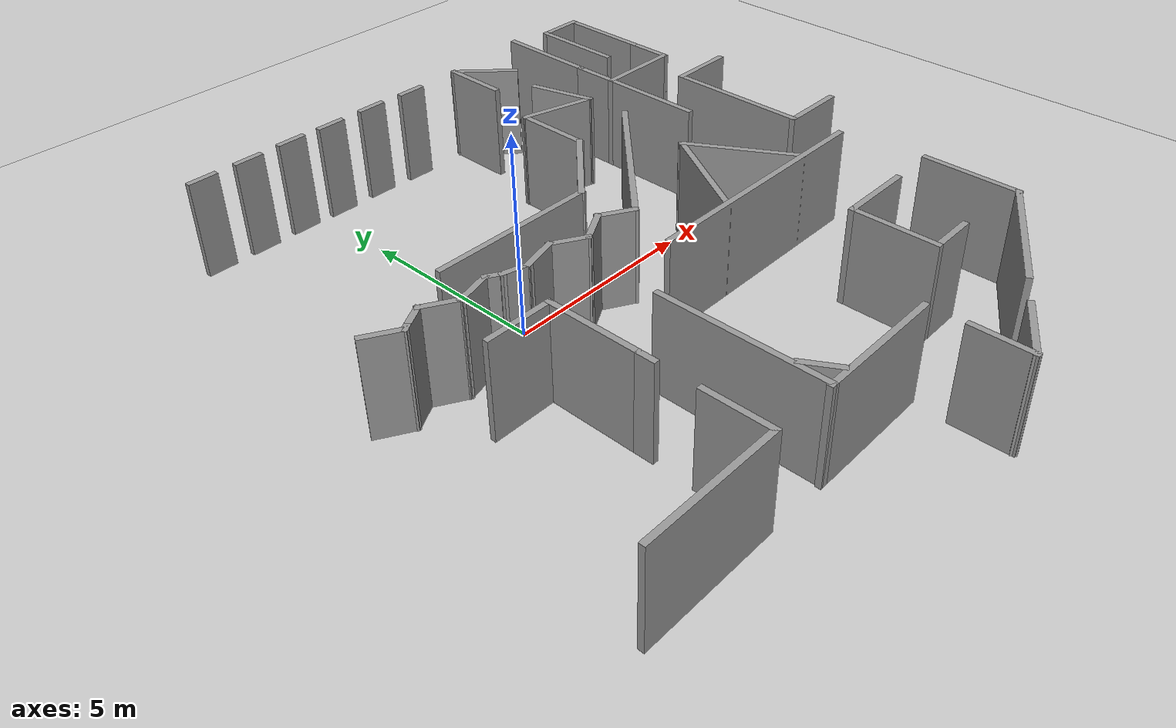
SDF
<sdf version="1.7">
 <world name="default">
  <model name="ground_plane">
   <static>1</static>
   <link name="link">
    <collision name="collision">
     <geometry><plane><normal>0 0 1</normal><size>100 100</size></plane></geometry>
     <surface><friction><ode><mu>100</mu><mu2>50</mu2></ode></friction></surface>
    </collision>
    <visual name="visual">
     <cast_shadows>0</cast_shadows>
     <geometry><plane><normal>0 0 1</normal><size>100 100</size></plane></geometry>
     <material>
      <script><uri>file://media/materials/scripts/gazebo.material</uri><name>Gazebo/Grey</name></script>
     </material>
    </visual>
   </link>
  </model>
  <model name="complicated_walls">
   <pose>2.75281 -1.1927 0 0 -0 0</pose>
   <link name="Wall_101">
    <collision name="Wall_101_Collision">
     <geometry><box><size>2.25 0.15 2.5</size></box></geometry>
     <pose>0 0 1.25 0 -0 0</pose>
    </collision>
    <visual name="Wall_101_Visual">
     <pose>0 0 1.25 0 -0 0</pose>
     <geometry><box><size>2.25 0.15 2.5</size></box></geometry>
     <material>
      <script><uri>file://media/materials/scripts/gazebo.material</uri><name>Gazebo/Grey</name></script>
      <ambient>1 1 1 1</ambient>
     </material>
     <meta><layer>0</layer></meta>
    </visual>
    <pose>5.22484 4.90268 0 0 -0 0</pose>
   </link>
   <link name="Wall_102">
    <collision name="Wall_102_Collision">
     <geometry><box><size>1.25 0.15 2.5</size></box></geometry>
     <pose>0 0 1.25 0 -0 0</pose>
    </collision>
    <visual name="Wall_102_Visual">
     <pose>0 0 1.25 0 -0 0</pose>
     <geometry><box><size>1.25 0.15 2.5</size></box></geometry>
     <material>
      <script><uri>file://media/materials/scripts/gazebo.material</uri><name>Gazebo/Grey</name></script>
      <ambient>1 1 1 1</ambient>
     </material>
     <meta><layer>0</layer></meta>
    </visual>
    <pose>6.27484 5.45268 0 0 -0 1.5708</pose>
   </link>
   <link name="Wall_108">
    <collision name="Wall_108_Collision">
     <geometry><box><size>2.5 0.15 2.5</size></box></geometry>
     <pose>0 0 1.25 0 -0 0</pose>
    </collision>
    <visual name="Wall_108_Visual">
     <pose>0 0 1.25 0 -0 0</pose>
     <geometry><box><size>2.5 0.15 2.5</size></box></geometry>
     <material>
      <script><uri>file://media/materials/scripts/gazebo.material</uri><name>Gazebo/Grey</name></script>
      <ambient>1 1 1 1</ambient>
     </material>
     <meta><layer>0</layer></meta>
    </visual>
    <pose>6.27484 7.17768 0 0 -0 1.5708</pose>
   </link>
   <link name="Wall_109">
    <collision name="Wall_109_Collision">
     <geometry><box><size>1.25 0.15 2.5</size></box></geometry>
     <pose>0 0 1.25 0 -0 0</pose>
    </collision>
    <visual name="Wall_109_Visual">
     <pose>0 0 1.25 0 -0 0</pose>
     <geometry><box><size>1.25 0.15 2.5</size></box></geometry>
     <material>
      <script><uri>file://media/materials/scripts/gazebo.material</uri><name>Gazebo/Grey</name></script>
      <ambient>1 1 1 1</ambient>
     </material>
     <meta><layer>0</layer></meta>
    </visual>
    <pose>5.72484 8.35268 0 0 -0 3.14159</pose>
   </link>
   <link name="Wall_110">
    <collision name="Wall_110_Collision">
     <geometry><box><size>2.5 0.15 2.5</size></box></geometry>
     <pose>0 0 1.25 0 -0 0</pose>
    </collision>
    <visual name="Wall_110_Visual">
     <pose>0 0 1.25 0 -0 0</pose>
     <geometry><box><size>2.5 0.15 2.5</size></box></geometry>
     <material>
      <script><uri>file://media/materials/scripts/gazebo.material</uri><name>Gazebo/Grey</name></script>
      <ambient>1 1 1 1</ambient>
     </material>
     <meta><layer>0</layer></meta>
    </visual>
    <pose>5.17484 7.17768 0 0 -0 -1.5708</pose>
   </link>
   <link name="Wall_112">
    <collision name="Wall_112_Collision">
     <geometry><box><size>1.75 0.15 2.5</size></box></geometry>
     <pose>0 0 1.25 0 -0 0</pose>
    </collision>
    <visual name="Wall_112_Visual">
     <pose>0 0 1.25 0 -0 0</pose>
     <geometry><box><size>1.75 0.15 2.5</size></box></geometry>
     <material>
      <script><uri>file://media/materials/scripts/gazebo.material</uri><name>Gazebo/Grey</name></script>
      <ambient>1 1 1 1</ambient>
     </material>
     <meta><layer>0</layer></meta>
    </visual>
    <pose>2.32734 7.82443 0 0 -0 2.35619</pose>
   </link>
   <link name="Wall_113">
    <collision name="Wall_113_Collision">
     <geometry><box><size>1.75 0.15 2.5</size></box></geometry>
     <pose>0 0 1.25 0 -0 0</pose>
    </collision>
    <visual name="Wall_113_Visual">
     <pose>0 0 1.25 0 -0 0</pose>
     <geometry><box><size>1.75 0.15 2.5</size></box></geometry>
     <material>
      <script><uri>file://media/materials/scripts/gazebo.material</uri><name>Gazebo/Grey</name></script>
      <ambient>1 1 1 1</ambient>
     </material>
     <meta><layer>0</layer></meta>
    </visual>
    <pose>1.76165 7.59012 0 0 -0 -1.5708</pose>
   </link>
   <link name="Wall_115">
    <collision name="Wall_115_Collision">
     <geometry><box><size>1.75 0.15 2.5</size></box></geometry>
     <pose>0 0 1.25 0 -0 0</pose>
    </collision>
    <visual name="Wall_115_Visual">
     <pose>0 0 1.25 0 -0 0</pose>
     <geometry><box><size>1.75 0.15 2.5</size></box></geometry>
     <material>
      <script><uri>file://media/materials/scripts/gazebo.material</uri><name>Gazebo/Grey</name></script>
      <ambient>1 1 1 1</ambient>
     </material>
     <meta><layer>0</layer></meta>
    </visual>
    <pose>2.79418 5.38476 0 0 -0 -1.309</pose>
   </link>
   <link name="Wall_116">
    <collision name="Wall_116_Collision">
     <geometry><box><size>2 0.15 2.5</size></box></geometry>
     <pose>0 0 1.25 0 -0 0</pose>
    </collision>
    <visual name="Wall_116_Visual">
     <pose>0 0 1.25 0 -0 0</pose>
     <geometry><box><size>2 0.15 2.5</size></box></geometry>
     <material>
      <script><uri>file://media/materials/scripts/gazebo.material</uri><name>Gazebo/Grey</name></script>
      <ambient>1 1 1 1</ambient>
     </material>
     <meta><layer>0</layer></meta>
    </visual>
    <pose>2.10775 4.85142 0 0 -0 2.87979</pose>
   </link>
   <link name="Wall_118">
    <collision name="Wall_118_Collision">
     <geometry><box><size>2 0.15 2.5</size></box></geometry>
     <pose>0 0 1.25 0 -0 0</pose>
    </collision>
    <visual name="Wall_118_Visual">
     <pose>0 0 1.25 0 -0 0</pose>
     <geometry><box><size>2 0.15 2.5</size></box></geometry>
     <material>
      <script><uri>file://media/materials/scripts/gazebo.material</uri><name>Gazebo/Grey</name></script>
      <ambient>1 1 1 1</ambient>
     </material>
     <meta><layer>0</layer></meta>
    </visual>
    <pose>1.21427 4.16583 0 0 -0 -1.5708</pose>
   </link>
   <link name="Wall_121">
    <collision name="Wall_121_Collision">
     <geometry><box><size>2.5 0.15 2.5</size></box></geometry>
     <pose>0 0 1.25 0 -0 0</pose>
    </collision>
    <visual name="Wall_121_Visual">
     <pose>0 0 1.25 0 -0 0</pose>
     <geometry><box><size>2.5 0.15 2.5</size></box></geometry>
     <material>
      <script><uri>file://media/materials/scripts/gazebo.material</uri><name>Gazebo/Grey</name></script>
      <ambient>1 1 1 1</ambient>
     </material>
     <meta><layer>0</layer></meta>
    </visual>
    <pose>0.38342 2.40998 0 0 -0 -2.35619</pose>
   </link>
   <link name="Wall_122">
    <collision name="Wall_122_Collision">
     <geometry><box><size>4.25 0.15 2.5</size></box></geometry>
     <pose>0 0 1.25 0 -0 0</pose>
    </collision>
    <visual name="Wall_122_Visual">
     <pose>0 0 1.25 0 -0 0</pose>
     <geometry><box><size>4.25 0.15 2.5</size></box></geometry>
     <material>
      <script><uri>file://media/materials/scripts/gazebo.material</uri><name>Gazebo/Grey</name></script>
      <ambient>1 1 1 1</ambient>
     </material>
     <meta><layer>0</layer></meta>
    </visual>
    <pose>-2.49743 1.57913 0 0 -0 3.14159</pose>
   </link>
   <link name="Wall_126">
    <collision name="Wall_126_Collision">
     <geometry><box><size>0.75 0.15 2.5</size></box></geometry>
     <pose>0 0 1.25 0 -0 0</pose>
    </collision>
    <visual name="Wall_126_Visual">
     <pose>0 0 1.25 0 -0 0</pose>
     <geometry><box><size>0.75 0.15 2.5</size></box></geometry>
     <material>
      <script><uri>file://media/materials/scripts/gazebo.material</uri><name>Gazebo/Grey</name></script>
      <ambient>1 1 1 1</ambient>
     </material>
     <meta><layer>0</layer></meta>
    </visual>
    <pose>0.251573 8.36592 0 0 -0 0</pose>
   </link>
   <link name="Wall_128">
    <collision name="Wall_128_Collision">
     <geometry><box><size>0.75 0.15 2.5</size></box></geometry>
     <pose>0 0 1.25 0 -0 0</pose>
    </collision>
    <visual name="Wall_128_Visual">
     <pose>0 0 1.25 0 -0 0</pose>
     <geometry><box><size>0.75 0.15 2.5</size></box></geometry>
     <material>
      <script><uri>file://media/materials/scripts/gazebo.material</uri><name>Gazebo/Grey</name></script>
      <ambient>1 1 1 1</ambient>
     </material>
     <meta><layer>0</layer></meta>
    </visual>
    <pose>-0.995716 8.40637 0 0 -0 3.14159</pose>
   </link>
   <link name="Wall_130">
    <collision name="Wall_130_Collision">
     <geometry><box><size>0.75 0.15 2.5</size></box></geometry>
     <pose>0 0 1.25 0 -0 0</pose>
    </collision>
    <visual name="Wall_130_Visual">
     <pose>0 0 1.25 0 -0 0</pose>
     <geometry><box><size>0.75 0.15 2.5</size></box></geometry>
     <material>
      <script><uri>file://media/materials/scripts/gazebo.material</uri><name>Gazebo/Grey</name></script>
      <ambient>1 1 1 1</ambient>
     </material>
     <meta><layer>0</layer></meta>
    </visual>
    <pose>-2.24241 8.39485 0 0 -0 3.14159</pose>
   </link>
   <link name="Wall_132">
    <collision name="Wall_132_Collision">
     <geometry><box><size>0.75 0.15 2.5</size></box></geometry>
     <pose>0 0 1.25 0 -0 0</pose>
    </collision>
    <visual name="Wall_132_Visual">
     <pose>0 0 1.25 0 -0 0</pose>
     <geometry><box><size>0.75 0.15 2.5</size></box></geometry>
     <material>
      <script><uri>file://media/materials/scripts/gazebo.material</uri><name>Gazebo/Grey</name></script>
      <ambient>1 1 1 1</ambient>
     </material>
     <meta><layer>0</layer></meta>
    </visual>
    <pose>-3.37562 8.42145 0 0 -0 3.14159</pose>
   </link>
   <link name="Wall_134">
    <collision name="Wall_134_Collision">
     <geometry><box><size>0.75 0.15 2.5</size></box></geometry>
     <pose>0 0 1.25 0 -0 0</pose>
    </collision>
    <visual name="Wall_134_Visual">
     <pose>0 0 1.25 0 -0 0</pose>
     <geometry><box><size>0.75 0.15 2.5</size></box></geometry>
     <material>
      <script><uri>file://media/materials/scripts/gazebo.material</uri><name>Gazebo/Grey</name></script>
      <ambient>1 1 1 1</ambient>
     </material>
     <meta><layer>0</layer></meta>
    </visual>
    <pose>-4.57263 8.39485 0 0 -0 3.14159</pose>
   </link>
   <link name="Wall_136">
    <collision name="Wall_136_Collision">
     <geometry><box><size>0.75 0.15 2.5</size></box></geometry>
     <pose>0 0 1.25 0 -0 0</pose>
    </collision>
    <visual name="Wall_136_Visual">
     <pose>0 0 1.25 0 -0 0</pose>
     <geometry><box><size>0.75 0.15 2.5</size></box></geometry>
     <material>
      <script><uri>file://media/materials/scripts/gazebo.material</uri><name>Gazebo/Grey</name></script>
      <ambient>1 1 1 1</ambient>
     </material>
     <meta><layer>0</layer></meta>
    </visual>
    <pose>-5.78024 8.39485 0 0 -0 3.14159</pose>
   </link>
   <link name="Wall_35">
    <collision name="Wall_35_Collision">
     <geometry><box><size>3.5 0.15 2.5</size></box></geometry>
     <pose>0 0 1.25 0 -0 0</pose>
    </collision>
    <visual name="Wall_35_Visual">
     <pose>0 0 1.25 0 -0 0</pose>
     <geometry><box><size>3.5 0.15 2.5</size></box></geometry>
     <material>
      <script><uri>file://media/materials/scripts/gazebo.material</uri><name>Gazebo/Grey</name></script>
      <ambient>1 1 1 1</ambient>
     </material>
     <meta><layer>0</layer></meta>
    </visual>
    <pose>-5.51959 -6.24325 0 0 -0 3.14159</pose>
   </link>
   <link name="Wall_37">
    <collision name="Wall_37_Collision">
     <geometry><box><size>1.75 0.15 2.5</size></box></geometry>
     <pose>0 0 1.25 0 -0 0</pose>
    </collision>
    <visual name="Wall_37_Visual">
     <pose>0 0 1.25 0 -0 0</pose>
     <geometry><box><size>1.75 0.15 2.5</size></box></geometry>
     <material>
      <script><uri>file://media/materials/scripts/gazebo.material</uri><name>Gazebo/Grey</name></script>
      <ambient>1 1 1 1</ambient>
     </material>
     <meta><layer>0</layer></meta>
    </visual>
    <pose>-3.84459 -5.44325 0 0 -0 1.5708</pose>
   </link>
   <link name="Wall_40">
    <collision name="Wall_40_Collision">
     <geometry><box><size>0.5 0.15 2.5</size></box></geometry>
     <pose>0 0 1.25 0 -0 0</pose>
    </collision>
    <visual name="Wall_40_Visual">
     <pose>0 0 1.25 0 -0 0</pose>
     <geometry><box><size>0.5 0.15 2.5</size></box></geometry>
     <material>
      <script><uri>file://media/materials/scripts/gazebo.material</uri><name>Gazebo/Grey</name></script>
      <ambient>1 1 1 1</ambient>
     </material>
     <meta><layer>0</layer></meta>
    </visual>
    <pose>-3.83383 -3.33511 0 0 -0 1.5708</pose>
   </link>
   <link name="Wall_42">
    <collision name="Wall_42_Collision">
     <geometry><box><size>2.5 0.15 2.5</size></box></geometry>
     <pose>0 0 1.25 0 -0 0</pose>
    </collision>
    <visual name="Wall_42_Visual">
     <pose>0 0 1.25 0 -0 0</pose>
     <geometry><box><size>2.5 0.15 2.5</size></box></geometry>
     <material>
      <script><uri>file://media/materials/scripts/gazebo.material</uri><name>Gazebo/Grey</name></script>
      <ambient>1 1 1 1</ambient>
     </material>
     <meta><layer>0</layer></meta>
    </visual>
    <pose>-3.83383 -1.98511 0 0 -0 1.5708</pose>
   </link>
   <link name="Wall_45">
    <collision name="Wall_45_Collision">
     <geometry><box><size>4.25 0.15 2.5</size></box></geometry>
     <pose>0 0 1.25 0 -0 0</pose>
    </collision>
    <visual name="Wall_45_Visual">
     <pose>0 0 1.25 0 -0 0</pose>
     <geometry><box><size>4.25 0.15 2.5</size></box></geometry>
     <material>
      <script><uri>file://media/materials/scripts/gazebo.material</uri><name>Gazebo/Grey</name></script>
      <ambient>1 1 1 1</ambient>
     </material>
     <meta><layer>0</layer></meta>
    </visual>
    <pose>-2.20117 -4.24331 0 0 -0 -1.5708</pose>
   </link>
   <link name="Wall_46">
    <collision name="Wall_46_Collision">
     <geometry><box><size>3.34054 0.15 2.5</size></box></geometry>
     <pose>0 0 1.25 0 -0 0</pose>
    </collision>
    <visual name="Wall_46_Visual">
     <pose>0 0 1.25 0 -0 0</pose>
     <geometry><box><size>3.34054 0.15 2.5</size></box></geometry>
     <material>
      <script><uri>file://media/materials/scripts/gazebo.material</uri><name>Gazebo/Grey</name></script>
      <ambient>1 1 1 1</ambient>
     </material>
     <meta><layer>0</layer></meta>
    </visual>
    <pose>-0.641081 -6.29331 0 0 -0 0</pose>
   </link>
   <link name="Wall_49">
    <collision name="Wall_49_Collision">
     <geometry><box><size>1.5 0.15 2.5</size></box></geometry>
     <pose>0 0 1.25 0 -0 0</pose>
    </collision>
    <visual name="Wall_49_Visual">
     <pose>0 0 1.25 0 -0 0</pose>
     <geometry><box><size>1.5 0.15 2.5</size></box></geometry>
     <material>
      <script><uri>file://media/materials/scripts/gazebo.material</uri><name>Gazebo/Grey</name></script>
      <ambient>1 1 1 1</ambient>
     </material>
     <meta><layer>0</layer></meta>
    </visual>
    <pose>0.983895 -7.92143 0 0 -0 -1.5708</pose>
   </link>
   <link name="Wall_53">
    <collision name="Wall_53_Collision">
     <geometry><box><size>1.75 0.15 2.5</size></box></geometry>
     <pose>0 0 1.25 0 -0 0</pose>
    </collision>
    <visual name="Wall_53_Visual">
     <pose>0 0 1.25 0 -0 0</pose>
     <geometry><box><size>1.75 0.15 2.5</size></box></geometry>
     <material>
      <script><uri>file://media/materials/scripts/gazebo.material</uri><name>Gazebo/Grey</name></script>
      <ambient>1 1 1 1</ambient>
     </material>
     <meta><layer>0</layer></meta>
    </visual>
    <pose>1.67671 -8.19642 0 0 -0 0.523599</pose>
   </link>
   <link name="Wall_55">
    <collision name="Wall_55_Collision">
     <geometry><box><size>3.5 0.15 2.5</size></box></geometry>
     <pose>0 0 1.25 0 -0 0</pose>
    </collision>
    <visual name="Wall_55_Visual">
     <pose>0 0 1.25 0 -0 0</pose>
     <geometry><box><size>3.5 0.15 2.5</size></box></geometry>
     <material>
      <script><uri>file://media/materials/scripts/gazebo.material</uri><name>Gazebo/Grey</name></script>
      <ambient>1 1 1 1</ambient>
     </material>
     <meta><layer>0</layer></meta>
    </visual>
    <pose>4.62687 -6.52097 0 0 -0 0.523599</pose>
   </link>
   <link name="Wall_57">
    <collision name="Wall_57_Collision">
     <geometry><box><size>2.5 0.15 2.5</size></box></geometry>
     <pose>0 0 1.25 0 -0 0</pose>
    </collision>
    <visual name="Wall_57_Visual">
     <pose>0 0 1.25 0 -0 0</pose>
     <geometry><box><size>2.5 0.15 2.5</size></box></geometry>
     <material>
      <script><uri>file://media/materials/scripts/gazebo.material</uri><name>Gazebo/Grey</name></script>
      <ambient>1 1 1 1</ambient>
     </material>
     <meta><layer>0</layer></meta>
    </visual>
    <pose>6.07746 -4.50847 0 0 -0 1.5708</pose>
   </link>
   <link name="Wall_59">
    <collision name="Wall_59_Collision">
     <geometry><box><size>2.25 0.15 2.5</size></box></geometry>
     <pose>0 0 1.25 0 -0 0</pose>
    </collision>
    <visual name="Wall_59_Visual">
     <pose>0 0 1.25 0 -0 0</pose>
     <geometry><box><size>2.25 0.15 2.5</size></box></geometry>
     <material>
      <script><uri>file://media/materials/scripts/gazebo.material</uri><name>Gazebo/Grey</name></script>
      <ambient>1 1 1 1</ambient>
     </material>
     <meta><layer>0</layer></meta>
    </visual>
    <pose>2.97746 -4.38347 0 0 -0 -1.5708</pose>
   </link>
   <link name="Wall_60">
    <collision name="Wall_60_Collision">
     <geometry><box><size>1.25 0.15 2.5</size></box></geometry>
     <pose>0 0 1.25 0 -0 0</pose>
    </collision>
    <visual name="Wall_60_Visual">
     <pose>0 0 1.25 0 -0 0</pose>
     <geometry><box><size>1.25 0.15 2.5</size></box></geometry>
     <material>
      <script><uri>file://media/materials/scripts/gazebo.material</uri><name>Gazebo/Grey</name></script>
      <ambient>1 1 1 1</ambient>
     </material>
     <meta><layer>0</layer></meta>
    </visual>
    <pose>3.52746 -5.43347 0 0 -0 0</pose>
   </link>
   <link name="Wall_62">
    <collision name="Wall_62_Collision">
     <geometry><box><size>2 0.15 2.5</size></box></geometry>
     <pose>0 0 1.25 0 -0 0</pose>
    </collision>
    <visual name="Wall_62_Visual">
     <pose>0 0 1.25 0 -0 0</pose>
     <geometry><box><size>2 0.15 2.5</size></box></geometry>
     <material>
      <script><uri>file://media/materials/scripts/gazebo.material</uri><name>Gazebo/Grey</name></script>
      <ambient>1 1 1 1</ambient>
     </material>
     <meta><layer>0</layer></meta>
    </visual>
    <pose>3.90246 -3.33347 0 0 -0 0</pose>
   </link>
   <link name="Wall_64">
    <collision name="Wall_64_Collision">
     <geometry><box><size>1 0.15 2.5</size></box></geometry>
     <pose>0 0 1.25 0 -0 0</pose>
    </collision>
    <visual name="Wall_64_Visual">
     <pose>0 0 1.25 0 -0 0</pose>
     <geometry><box><size>1 0.15 2.5</size></box></geometry>
     <material>
      <script><uri>file://media/materials/scripts/gazebo.material</uri><name>Gazebo/Grey</name></script>
      <ambient>1 1 1 1</ambient>
     </material>
     <meta><layer>0</layer></meta>
    </visual>
    <pose>-1.90109 -5.83585 0 0 -0 -1.0472</pose>
   </link>
   <link name="Wall_66">
    <collision name="Wall_66_Collision">
     <geometry><box><size>6.5 0.15 2.5</size></box></geometry>
     <pose>0 0 1.25 0 -0 0</pose>
    </collision>
    <visual name="Wall_66_Visual">
     <pose>0 0 1.25 0 -0 0</pose>
     <geometry><box><size>6.5 0.15 2.5</size></box></geometry>
     <material>
      <script><uri>file://media/materials/scripts/gazebo.material</uri><name>Gazebo/Grey</name></script>
      <ambient>1 1 1 1</ambient>
     </material>
     <meta><layer>0</layer></meta>
    </visual>
    <pose>2.56547 -1.15181 0 0 -0 0</pose>
   </link>
   <link name="Wall_68">
    <collision name="Wall_68_Collision">
     <geometry><box><size>3 0.15 2.5</size></box></geometry>
     <pose>0 0 1.25 0 -0 0</pose>
    </collision>
    <visual name="Wall_68_Visual">
     <pose>0 0 1.25 0 -0 0</pose>
     <geometry><box><size>3 0.15 2.5</size></box></geometry>
     <material>
      <script><uri>file://media/materials/scripts/gazebo.material</uri><name>Gazebo/Grey</name></script>
      <ambient>1 1 1 1</ambient>
     </material>
     <meta><layer>0</layer></meta>
    </visual>
    <pose>2.06907 0.105403 0 0 -0 1.0472</pose>
   </link>
   <link name="Wall_69">
    <collision name="Wall_69_Collision">
     <geometry><box><size>3 0.15 2.5</size></box></geometry>
     <pose>0 0 1.25 0 -0 0</pose>
    </collision>
    <visual name="Wall_69_Visual">
     <pose>0 0 1.25 0 -0 0</pose>
     <geometry><box><size>3 0.15 2.5</size></box></geometry>
     <material>
      <script><uri>file://media/materials/scripts/gazebo.material</uri><name>Gazebo/Grey</name></script>
      <ambient>1 1 1 1</ambient>
     </material>
     <meta><layer>0</layer></meta>
    </visual>
    <pose>3.49407 0.105403 0 0 -0 -1.0472</pose>
   </link>
   <link name="Wall_71">
    <collision name="Wall_71_Collision">
     <geometry><box><size>1.75 0.15 2.5</size></box></geometry>
     <pose>0 0 1.25 0 -0 0</pose>
    </collision>
    <visual name="Wall_71_Visual">
     <pose>0 0 1.25 0 -0 0</pose>
     <geometry><box><size>1.75 0.15 2.5</size></box></geometry>
     <material>
      <script><uri>file://media/materials/scripts/gazebo.material</uri><name>Gazebo/Grey</name></script>
      <ambient>1 1 1 1</ambient>
     </material>
     <meta><layer>0</layer></meta>
    </visual>
    <pose>-4.63383 -0.810111 0 0 -0 3.14159</pose>
   </link>
   <link name="Wall_73">
    <collision name="Wall_73_Collision">
     <geometry><box><size>0.75 0.15 2.5</size></box></geometry>
     <pose>0 0 1.25 0 -0 0</pose>
    </collision>
    <visual name="Wall_73_Visual">
     <pose>0 0 1.25 0 -0 0</pose>
     <geometry><box><size>0.75 0.15 2.5</size></box></geometry>
     <material>
      <script><uri>file://media/materials/scripts/gazebo.material</uri><name>Gazebo/Grey</name></script>
      <ambient>1 1 1 1</ambient>
     </material>
     <meta><layer>0</layer></meta>
    </visual>
    <pose>-3.51347 0.476492 0 0 -0 -0.261799</pose>
   </link>
   <link name="Wall_74">
    <collision name="Wall_74_Collision">
     <geometry><box><size>1 0.15 2.5</size></box></geometry>
     <pose>0 0 1.25 0 -0 0</pose>
    </collision>
    <visual name="Wall_74_Visual">
     <pose>0 0 1.25 0 -0 0</pose>
     <geometry><box><size>1 0.15 2.5</size></box></geometry>
     <material>
      <script><uri>file://media/materials/scripts/gazebo.material</uri><name>Gazebo/Grey</name></script>
      <ambient>1 1 1 1</ambient>
     </material>
     <meta><layer>0</layer></meta>
    </visual>
    <pose>-2.81317 0.508845 0 0 -0 0.261799</pose>
   </link>
   <link name="Wall_75">
    <collision name="Wall_75_Collision">
     <geometry><box><size>1 0.15 2.5</size></box></geometry>
     <pose>0 0 1.25 0 -0 0</pose>
    </collision>
    <visual name="Wall_75_Visual">
     <pose>0 0 1.25 0 -0 0</pose>
     <geometry><box><size>1 0.15 2.5</size></box></geometry>
     <material>
      <script><uri>file://media/materials/scripts/gazebo.material</uri><name>Gazebo/Grey</name></script>
      <ambient>1 1 1 1</ambient>
     </material>
     <meta><layer>0</layer></meta>
    </visual>
    <pose>-2.03459 0.406343 0 0 -0 -0.523599</pose>
   </link>
   <link name="Wall_76">
    <collision name="Wall_76_Collision">
     <geometry><box><size>1 0.15 2.5</size></box></geometry>
     <pose>0 0 1.25 0 -0 0</pose>
    </collision>
    <visual name="Wall_76_Visual">
     <pose>0 0 1.25 0 -0 0</pose>
     <geometry><box><size>1 0.15 2.5</size></box></geometry>
     <material>
      <script><uri>file://media/materials/scripts/gazebo.material</uri><name>Gazebo/Grey</name></script>
      <ambient>1 1 1 1</ambient>
     </material>
     <meta><layer>0</layer></meta>
    </visual>
    <pose>-1.29847 0.406343 0 0 -0 0.523599</pose>
   </link>
   <link name="Wall_78">
    <collision name="Wall_78_Collision">
     <geometry><box><size>0.5 0.15 2.5</size></box></geometry>
     <pose>0 0 1.25 0 -0 0</pose>
    </collision>
    <visual name="Wall_78_Visual">
     <pose>0 0 1.25 0 -0 0</pose>
     <geometry><box><size>0.5 0.15 2.5</size></box></geometry>
     <material>
      <script><uri>file://media/materials/scripts/gazebo.material</uri><name>Gazebo/Grey</name></script>
      <ambient>1 1 1 1</ambient>
     </material>
     <meta><layer>0</layer></meta>
    </visual>
    <pose>-3.9548 0.641638 0 0 -0 2.61799</pose>
   </link>
   <link name="Wall_79">
    <collision name="Wall_79_Collision">
     <geometry><box><size>1 0.15 2.5</size></box></geometry>
     <pose>0 0 1.25 0 -0 0</pose>
    </collision>
    <visual name="Wall_79_Visual">
     <pose>0 0 1.25 0 -0 0</pose>
     <geometry><box><size>1 0.15 2.5</size></box></geometry>
     <material>
      <script><uri>file://media/materials/scripts/gazebo.material</uri><name>Gazebo/Grey</name></script>
      <ambient>1 1 1 1</ambient>
     </material>
     <meta><layer>0</layer></meta>
    </visual>
    <pose>-4.51687 0.61914 0 0 -0 -2.87979</pose>
   </link>
   <link name="Wall_80">
    <collision name="Wall_80_Collision">
     <geometry><box><size>1 0.15 2.5</size></box></geometry>
     <pose>0 0 1.25 0 -0 0</pose>
    </collision>
    <visual name="Wall_80_Visual">
     <pose>0 0 1.25 0 -0 0</pose>
     <geometry><box><size>1 0.15 2.5</size></box></geometry>
     <material>
      <script><uri>file://media/materials/scripts/gazebo.material</uri><name>Gazebo/Grey</name></script>
      <ambient>1 1 1 1</ambient>
     </material>
     <meta><layer>0</layer></meta>
    </visual>
    <pose>-5.29545 0.721642 0 0 -0 2.61799</pose>
   </link>
   <link name="Wall_81">
    <collision name="Wall_81_Collision">
     <geometry><box><size>0.75 0.15 2.5</size></box></geometry>
     <pose>0 0 1.25 0 -0 0</pose>
    </collision>
    <visual name="Wall_81_Visual">
     <pose>0 0 1.25 0 -0 0</pose>
     <geometry><box><size>0.75 0.15 2.5</size></box></geometry>
     <material>
      <script><uri>file://media/materials/scripts/gazebo.material</uri><name>Gazebo/Grey</name></script>
      <ambient>1 1 1 1</ambient>
     </material>
     <meta><layer>0</layer></meta>
    </visual>
    <pose>-5.92332 0.784142 0 0 -0 -2.61799</pose>
   </link>
   <link name="Wall_83">
    <collision name="Wall_83_Collision">
     <geometry><box><size>0.25 0.15 2.5</size></box></geometry>
     <pose>0 0 1.25 0 -0 0</pose>
    </collision>
    <visual name="Wall_83_Visual">
     <pose>0 0 1.25 0 -0 0</pose>
     <geometry><box><size>0.25 0.15 2.5</size></box></geometry>
     <material>
      <script><uri>file://media/materials/scripts/gazebo.material</uri><name>Gazebo/Grey</name></script>
      <ambient>1 1 1 1</ambient>
     </material>
     <meta><layer>0</layer></meta>
    </visual>
    <pose>-6.22643 0.609142 0 0 -0 -2.61799</pose>
   </link>
   <link name="Wall_84">
    <collision name="Wall_84_Collision">
     <geometry><box><size>1 0.15 2.5</size></box></geometry>
     <pose>0 0 1.25 0 -0 0</pose>
    </collision>
    <visual name="Wall_84_Visual">
     <pose>0 0 1.25 0 -0 0</pose>
     <geometry><box><size>1 0.15 2.5</size></box></geometry>
     <material>
      <script><uri>file://media/materials/scripts/gazebo.material</uri><name>Gazebo/Grey</name></script>
      <ambient>1 1 1 1</ambient>
     </material>
     <meta><layer>0</layer></meta>
    </visual>
    <pose>-6.63779 0.796642 0 0 -0 2.61799</pose>
   </link>
   <link name="Wall_86">
    <collision name="Wall_86_Collision">
     <geometry><box><size>1 0.15 2.5</size></box></geometry>
     <pose>0 0 1.25 0 -0 0</pose>
    </collision>
    <visual name="Wall_86_Visual">
     <pose>0 0 1.25 0 -0 0</pose>
     <geometry><box><size>1 0.15 2.5</size></box></geometry>
     <material>
      <script><uri>file://media/materials/scripts/gazebo.material</uri><name>Gazebo/Grey</name></script>
      <ambient>1 1 1 1</ambient>
     </material>
     <meta><layer>0</layer></meta>
    </visual>
    <pose>-0.562347 0.406343 0 0 -0 -0.523599</pose>
   </link>
   <link name="Wall_88">
    <collision name="Wall_88_Collision">
     <geometry><box><size>4.75 0.15 2.5</size></box></geometry>
     <pose>0 0 1.25 0 -0 0</pose>
    </collision>
    <visual name="Wall_88_Visual">
     <pose>0 0 1.25 0 -0 0</pose>
     <geometry><box><size>4.75 0.15 2.5</size></box></geometry>
     <material>
      <script><uri>file://media/materials/scripts/gazebo.material</uri><name>Gazebo/Grey</name></script>
      <ambient>1 1 1 1</ambient>
     </material>
     <meta><layer>0</layer></meta>
    </visual>
    <pose>1.43206 1.82019 0 0 -0 0.785398</pose>
   </link>
   <link name="Wall_90">
    <collision name="Wall_90_Collision">
     <geometry><box><size>1.75 0.15 2.5</size></box></geometry>
     <pose>0 0 1.25 0 -0 0</pose>
    </collision>
    <visual name="Wall_90_Visual">
     <pose>0 0 1.25 0 -0 0</pose>
     <geometry><box><size>1.75 0.15 2.5</size></box></geometry>
     <material>
      <script><uri>file://media/materials/scripts/gazebo.material</uri><name>Gazebo/Grey</name></script>
      <ambient>1 1 1 1</ambient>
     </material>
     <meta><layer>0</layer></meta>
    </visual>
    <pose>6.39459 0.088899 0 0 -0 0</pose>
   </link>
   <link name="Wall_92">
    <collision name="Wall_92_Collision">
     <geometry><box><size>3.75 0.15 2.5</size></box></geometry>
     <pose>0 0 1.25 0 -0 0</pose>
    </collision>
    <visual name="Wall_92_Visual">
     <pose>0 0 1.25 0 -0 0</pose>
     <geometry><box><size>3.75 0.15 2.5</size></box></geometry>
     <material>
      <script><uri>file://media/materials/scripts/gazebo.material</uri><name>Gazebo/Grey</name></script>
      <ambient>1 1 1 1</ambient>
     </material>
     <meta><layer>0</layer></meta>
    </visual>
    <pose>5.59459 1.8889 0 0 -0 1.5708</pose>
   </link>
   <link name="Wall_93">
    <collision name="Wall_93_Collision">
     <geometry><box><size>1.75 0.15 2.5</size></box></geometry>
     <pose>0 0 1.25 0 -0 0</pose>
    </collision>
    <visual name="Wall_93_Visual">
     <pose>0 0 1.25 0 -0 0</pose>
     <geometry><box><size>1.75 0.15 2.5</size></box></geometry>
     <material>
      <script><uri>file://media/materials/scripts/gazebo.material</uri><name>Gazebo/Grey</name></script>
      <ambient>1 1 1 1</ambient>
     </material>
     <meta><layer>0</layer></meta>
    </visual>
    <pose>6.39459 3.6889 0 0 -0 0</pose>
   </link>
   <link name="Wall_95">
    <collision name="Wall_95_Collision">
     <geometry><box><size>2.75 0.15 2.5</size></box></geometry>
     <pose>0 0 1.25 0 -0 0</pose>
    </collision>
    <visual name="Wall_95_Visual">
     <pose>0 0 1.25 0 -0 0</pose>
     <geometry><box><size>2.75 0.15 2.5</size></box></geometry>
     <material>
      <script><uri>file://media/materials/scripts/gazebo.material</uri><name>Gazebo/Grey</name></script>
      <ambient>1 1 1 1</ambient>
     </material>
     <meta><layer>0</layer></meta>
    </visual>
    <pose>4.17484 3.60268 0 0 -0 -1.5708</pose>
   </link>
   <link name="Wall_97">
    <collision name="Wall_97_Collision">
     <geometry><box><size>1.2712 0.15 2.5</size></box></geometry>
     <pose>0 0 1.25 0 -0 0</pose>
    </collision>
    <visual name="Wall_97_Visual">
     <pose>0 0 1.25 0 -0 0</pose>
     <geometry><box><size>1.2712 0.15 2.5</size></box></geometry>
     <material>
      <script><uri>file://media/materials/scripts/gazebo.material</uri><name>Gazebo/Grey</name></script>
      <ambient>1 1 1 1</ambient>
     </material>
     <meta><layer>0</layer></meta>
    </visual>
    <pose>4.17484 5.46328 0 0 -0 1.5708</pose>
   </link>
   <link name="Wall_98">
    <collision name="Wall_98_Collision">
     <geometry><box><size>2.75 0.15 2.5</size></box></geometry>
     <pose>0 0 1.25 0 -0 0</pose>
    </collision>
    <visual name="Wall_98_Visual">
     <pose>0 0 1.25 0 -0 0</pose>
     <geometry><box><size>2.75 0.15 2.5</size></box></geometry>
     <material>
      <script><uri>file://media/materials/scripts/gazebo.material</uri><name>Gazebo/Grey</name></script>
      <ambient>1 1 1 1</ambient>
     </material>
     <meta><layer>0</layer></meta>
    </visual>
    <pose>4.17484 7.32388 0 0 -0 1.5708</pose>
   </link>
   <static>1</static>
  </model>
 </world>
</sdf>
